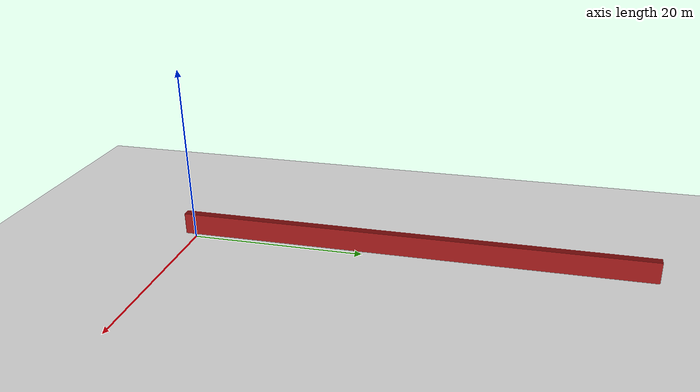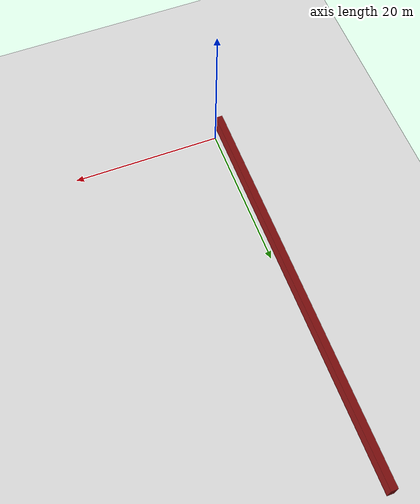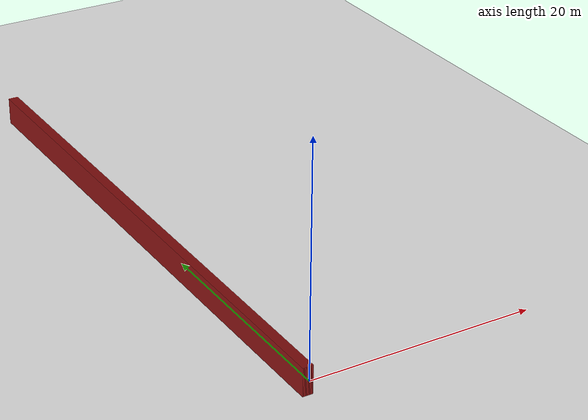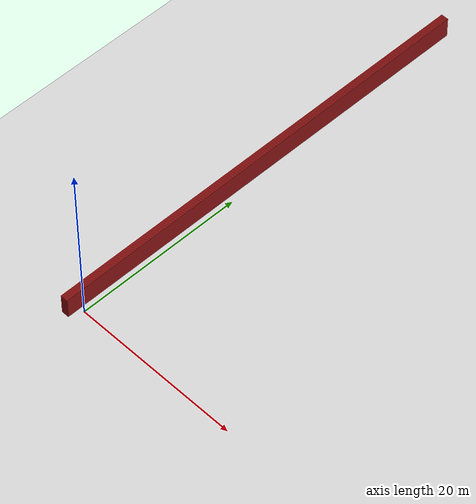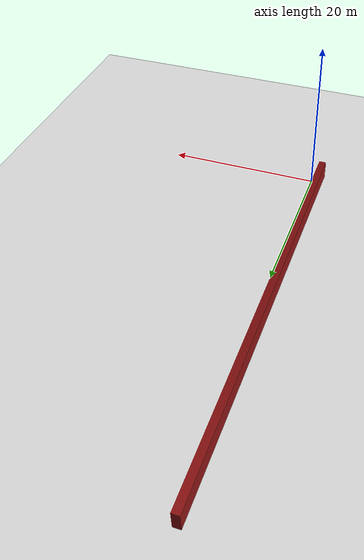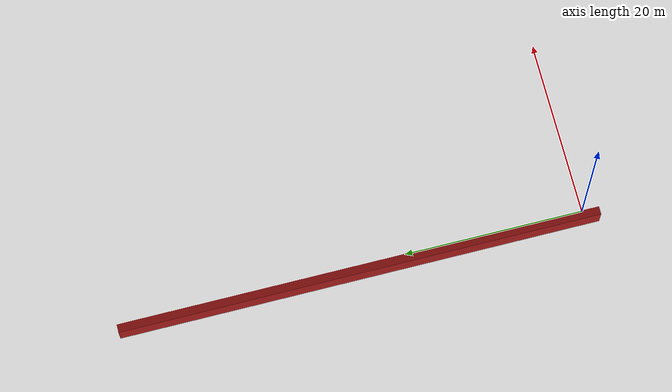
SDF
<sdf version="1.4">
 <world name="1_wall">
  <model name="ground_plane">
   <static>1</static>
   <link name="link">
    <collision name="collision">
     <geometry><plane><normal>0 0 1</normal><size>1000 1000</size></plane></geometry>
     <surface><friction><ode><mu>100</mu><mu2>50</mu2></ode></friction></surface>
    </collision>
    <visual name="visual">
     <cast_shadows>0</cast_shadows>
     <geometry><plane><normal>0 0 1</normal><size>10000 10000</size></plane></geometry>
     <material>
      <script><uri>file://media/materials/scripts/gazebo.material</uri><name>Gazebo/Grey</name></script>
     </material>
    </visual>
    <velocity_decay><linear>0</linear><angular>0</angular></velocity_decay>
   </link>
  </model>
  <model name="Wall_0">
   <static>1</static>
   <link name="Wall_0">
    <collision name="Wall_Collision_0">
     <geometry><box><size>53.65 0.05 2.5</size></box></geometry>
     <pose>0 0 1.25 0 -0 0</pose>
    </collision>
    <visual name="Wall_Visual_0">
     <pose>0 0 1.25 0 -0 0</pose>
     <geometry><box><size>53.65 0.05 2.5</size></box></geometry>
     <material>
      <script><uri>file://media/materials/scripts/gazebo.material</uri><name>Gazebo/Red</name></script>
     </material>
    </visual>
    <velocity_decay><linear>0</linear><angular>0</angular></velocity_decay>
    <pose>-1.5 25.3 0 0 0 1.5707963267948966</pose>
   </link>
  </model>
  <model name="Wall_1">
   <static>1</static>
   <link name="Wall_1">
    <collision name="Wall_Collision_1">
     <geometry><box><size>53.65 0.05 2.5</size></box></geometry>
     <pose>0 0 1.25 0 -0 0</pose>
    </collision>
    <visual name="Wall_Visual_1">
     <pose>0 0 1.25 0 -0 0</pose>
     <geometry><box><size>53.65 0.05 2.5</size></box></geometry>
     <material>
      <script><uri>file://media/materials/scripts/gazebo.material</uri><name>Gazebo/Red</name></script>
     </material>
    </visual>
    <velocity_decay><linear>0</linear><angular>0</angular></velocity_decay>
    <pose>-1.45 25.3 0 0 0 1.5707963267948966</pose>
   </link>
  </model>
  <model name="Wall_2">
   <static>1</static>
   <link name="Wall_2">
    <collision name="Wall_Collision_2">
     <geometry><box><size>53.65 0.05 2.5</size></box></geometry>
     <pose>0 0 1.25 0 -0 0</pose>
    </collision>
    <visual name="Wall_Visual_2">
     <pose>0 0 1.25 0 -0 0</pose>
     <geometry><box><size>53.65 0.05 2.5</size></box></geometry>
     <material>
      <script><uri>file://media/materials/scripts/gazebo.material</uri><name>Gazebo/Red</name></script>
     </material>
    </visual>
    <velocity_decay><linear>0</linear><angular>0</angular></velocity_decay>
    <pose>-1.4 25.3 0 0 0 1.5707963267948966</pose>
   </link>
  </model>
  <model name="Wall_3">
   <static>1</static>
   <link name="Wall_3">
    <collision name="Wall_Collision_3">
     <geometry><box><size>53.65 0.05 2.5</size></box></geometry>
     <pose>0 0 1.25 0 -0 0</pose>
    </collision>
    <visual name="Wall_Visual_3">
     <pose>0 0 1.25 0 -0 0</pose>
     <geometry><box><size>53.65 0.05 2.5</size></box></geometry>
     <material>
      <script><uri>file://media/materials/scripts/gazebo.material</uri><name>Gazebo/Red</name></script>
     </material>
    </visual>
    <velocity_decay><linear>0</linear><angular>0</angular></velocity_decay>
    <pose>-1.35 25.3 0 0 0 1.5707963267948966</pose>
   </link>
  </model>
  <model name="Wall_4">
   <static>1</static>
   <link name="Wall_4">
    <collision name="Wall_Collision_4">
     <geometry><box><size>53.65 0.05 2.5</size></box></geometry>
     <pose>0 0 1.25 0 -0 0</pose>
    </collision>
    <visual name="Wall_Visual_4">
     <pose>0 0 1.25 0 -0 0</pose>
     <geometry><box><size>53.65 0.05 2.5</size></box></geometry>
     <material>
      <script><uri>file://media/materials/scripts/gazebo.material</uri><name>Gazebo/Red</name></script>
     </material>
    </visual>
    <velocity_decay><linear>0</linear><angular>0</angular></velocity_decay>
    <pose>-1.3 25.3 0 0 0 1.5707963267948966</pose>
   </link>
  </model>
  <model name="Wall_5">
   <static>1</static>
   <link name="Wall_5">
    <collision name="Wall_Collision_5">
     <geometry><box><size>53.65 0.05 2.5</size></box></geometry>
     <pose>0 0 1.25 0 -0 0</pose>
    </collision>
    <visual name="Wall_Visual_5">
     <pose>0 0 1.25 0 -0 0</pose>
     <geometry><box><size>53.65 0.05 2.5</size></box></geometry>
     <material>
      <script><uri>file://media/materials/scripts/gazebo.material</uri><name>Gazebo/Red</name></script>
     </material>
    </visual>
    <velocity_decay><linear>0</linear><angular>0</angular></velocity_decay>
    <pose>-1.25 25.3 0 0 0 1.5707963267948966</pose>
   </link>
  </model>
  <model name="Wall_6">
   <static>1</static>
   <link name="Wall_6">
    <collision name="Wall_Collision_6">
     <geometry><box><size>53.65 0.05 2.5</size></box></geometry>
     <pose>0 0 1.25 0 -0 0</pose>
    </collision>
    <visual name="Wall_Visual_6">
     <pose>0 0 1.25 0 -0 0</pose>
     <geometry><box><size>53.65 0.05 2.5</size></box></geometry>
     <material>
      <script><uri>file://media/materials/scripts/gazebo.material</uri><name>Gazebo/Red</name></script>
     </material>
    </visual>
    <velocity_decay><linear>0</linear><angular>0</angular></velocity_decay>
    <pose>-1.2 25.3 0 0 0 1.5707963267948966</pose>
   </link>
  </model>
  <model name="Wall_7">
   <static>1</static>
   <link name="Wall_7">
    <collision name="Wall_Collision_7">
     <geometry><box><size>53.65 0.05 2.5</size></box></geometry>
     <pose>0 0 1.25 0 -0 0</pose>
    </collision>
    <visual name="Wall_Visual_7">
     <pose>0 0 1.25 0 -0 0</pose>
     <geometry><box><size>53.65 0.05 2.5</size></box></geometry>
     <material>
      <script><uri>file://media/materials/scripts/gazebo.material</uri><name>Gazebo/Red</name></script>
     </material>
    </visual>
    <velocity_decay><linear>0</linear><angular>0</angular></velocity_decay>
    <pose>-1.15 25.3 0 0 0 1.5707963267948966</pose>
   </link>
  </model>
  <model name="Wall_8">
   <static>1</static>
   <link name="Wall_8">
    <collision name="Wall_Collision_8">
     <geometry><box><size>53.65 0.05 2.5</size></box></geometry>
     <pose>0 0 1.25 0 -0 0</pose>
    </collision>
    <visual name="Wall_Visual_8">
     <pose>0 0 1.25 0 -0 0</pose>
     <geometry><box><size>53.65 0.05 2.5</size></box></geometry>
     <material>
      <script><uri>file://media/materials/scripts/gazebo.material</uri><name>Gazebo/Red</name></script>
     </material>
    </visual>
    <velocity_decay><linear>0</linear><angular>0</angular></velocity_decay>
    <pose>-1.1 25.3 0 0 0 1.5707963267948966</pose>
   </link>
  </model>
  <model name="Wall_9">
   <static>1</static>
   <link name="Wall_9">
    <collision name="Wall_Collision_9">
     <geometry><box><size>53.65 0.05 2.5</size></box></geometry>
     <pose>0 0 1.25 0 -0 0</pose>
    </collision>
    <visual name="Wall_Visual_9">
     <pose>0 0 1.25 0 -0 0</pose>
     <geometry><box><size>53.65 0.05 2.5</size></box></geometry>
     <material>
      <script><uri>file://media/materials/scripts/gazebo.material</uri><name>Gazebo/Red</name></script>
     </material>
    </visual>
    <velocity_decay><linear>0</linear><angular>0</angular></velocity_decay>
    <pose>-1.05 25.3 0 0 0 1.5707963267948966</pose>
   </link>
  </model>
  <model name="Wall_10">
   <static>1</static>
   <link name="Wall_10">
    <collision name="Wall_Collision_10">
     <geometry><box><size>53.65 0.05 2.5</size></box></geometry>
     <pose>0 0 1.25 0 -0 0</pose>
    </collision>
    <visual name="Wall_Visual_10">
     <pose>0 0 1.25 0 -0 0</pose>
     <geometry><box><size>53.65 0.05 2.5</size></box></geometry>
     <material>
      <script><uri>file://media/materials/scripts/gazebo.material</uri><name>Gazebo/Red</name></script>
     </material>
    </visual>
    <velocity_decay><linear>0</linear><angular>0</angular></velocity_decay>
    <pose>-1.0 25.3 0 0 0 1.5707963267948966</pose>
   </link>
  </model>
  <model name="Wall_11">
   <static>1</static>
   <link name="Wall_11">
    <collision name="Wall_Collision_11">
     <geometry><box><size>53.65 0.05 2.5</size></box></geometry>
     <pose>0 0 1.25 0 -0 0</pose>
    </collision>
    <visual name="Wall_Visual_11">
     <pose>0 0 1.25 0 -0 0</pose>
     <geometry><box><size>53.65 0.05 2.5</size></box></geometry>
     <material>
      <script><uri>file://media/materials/scripts/gazebo.material</uri><name>Gazebo/Red</name></script>
     </material>
    </visual>
    <velocity_decay><linear>0</linear><angular>0</angular></velocity_decay>
    <pose>-0.95 25.3 0 0 0 1.5707963267948966</pose>
   </link>
  </model>
  <model name="Wall_12">
   <static>1</static>
   <link name="Wall_12">
    <collision name="Wall_Collision_12">
     <geometry><box><size>53.65 0.05 2.5</size></box></geometry>
     <pose>0 0 1.25 0 -0 0</pose>
    </collision>
    <visual name="Wall_Visual_12">
     <pose>0 0 1.25 0 -0 0</pose>
     <geometry><box><size>53.65 0.05 2.5</size></box></geometry>
     <material>
      <script><uri>file://media/materials/scripts/gazebo.material</uri><name>Gazebo/Red</name></script>
     </material>
    </visual>
    <velocity_decay><linear>0</linear><angular>0</angular></velocity_decay>
    <pose>-0.9 25.3 0 0 0 1.5707963267948966</pose>
   </link>
  </model>
  <model name="Wall_13">
   <static>1</static>
   <link name="Wall_13">
    <collision name="Wall_Collision_13">
     <geometry><box><size>53.65 0.05 2.5</size></box></geometry>
     <pose>0 0 1.25 0 -0 0</pose>
    </collision>
    <visual name="Wall_Visual_13">
     <pose>0 0 1.25 0 -0 0</pose>
     <geometry><box><size>53.65 0.05 2.5</size></box></geometry>
     <material>
      <script><uri>file://media/materials/scripts/gazebo.material</uri><name>Gazebo/Red</name></script>
     </material>
    </visual>
    <velocity_decay><linear>0</linear><angular>0</angular></velocity_decay>
    <pose>-0.85 25.3 0 0 0 1.5707963267948966</pose>
   </link>
  </model>
  <model name="Wall_14">
   <static>1</static>
   <link name="Wall_14">
    <collision name="Wall_Collision_14">
     <geometry><box><size>53.65 0.05 2.5</size></box></geometry>
     <pose>0 0 1.25 0 -0 0</pose>
    </collision>
    <visual name="Wall_Visual_14">
     <pose>0 0 1.25 0 -0 0</pose>
     <geometry><box><size>53.65 0.05 2.5</size></box></geometry>
     <material>
      <script><uri>file://media/materials/scripts/gazebo.material</uri><name>Gazebo/Red</name></script>
     </material>
    </visual>
    <velocity_decay><linear>0</linear><angular>0</angular></velocity_decay>
    <pose>-0.8 25.3 0 0 0 1.5707963267948966</pose>
   </link>
  </model>
  <model name="Wall_15">
   <static>1</static>
   <link name="Wall_15">
    <collision name="Wall_Collision_15">
     <geometry><box><size>53.65 0.05 2.5</size></box></geometry>
     <pose>0 0 1.25 0 -0 0</pose>
    </collision>
    <visual name="Wall_Visual_15">
     <pose>0 0 1.25 0 -0 0</pose>
     <geometry><box><size>53.65 0.05 2.5</size></box></geometry>
     <material>
      <script><uri>file://media/materials/scripts/gazebo.material</uri><name>Gazebo/Red</name></script>
     </material>
    </visual>
    <velocity_decay><linear>0</linear><angular>0</angular></velocity_decay>
    <pose>-0.75 25.3 0 0 0 1.5707963267948966</pose>
   </link>
  </model>
  <model name="Wall_16">
   <static>1</static>
   <link name="Wall_16">
    <collision name="Wall_Collision_16">
     <geometry><box><size>53.65 0.05 2.5</size></box></geometry>
     <pose>0 0 1.25 0 -0 0</pose>
    </collision>
    <visual name="Wall_Visual_16">
     <pose>0 0 1.25 0 -0 0</pose>
     <geometry><box><size>53.65 0.05 2.5</size></box></geometry>
     <material>
      <script><uri>file://media/materials/scripts/gazebo.material</uri><name>Gazebo/Red</name></script>
     </material>
    </visual>
    <velocity_decay><linear>0</linear><angular>0</angular></velocity_decay>
    <pose>-0.7 25.3 0 0 0 1.5707963267948966</pose>
   </link>
  </model>
  <model name="Wall_17">
   <static>1</static>
   <link name="Wall_17">
    <collision name="Wall_Collision_17">
     <geometry><box><size>53.65 0.05 2.5</size></box></geometry>
     <pose>0 0 1.25 0 -0 0</pose>
    </collision>
    <visual name="Wall_Visual_17">
     <pose>0 0 1.25 0 -0 0</pose>
     <geometry><box><size>53.65 0.05 2.5</size></box></geometry>
     <material>
      <script><uri>file://media/materials/scripts/gazebo.material</uri><name>Gazebo/Red</name></script>
     </material>
    </visual>
    <velocity_decay><linear>0</linear><angular>0</angular></velocity_decay>
    <pose>-0.65 25.3 0 0 0 1.5707963267948966</pose>
   </link>
  </model>
 </world>
</sdf>
